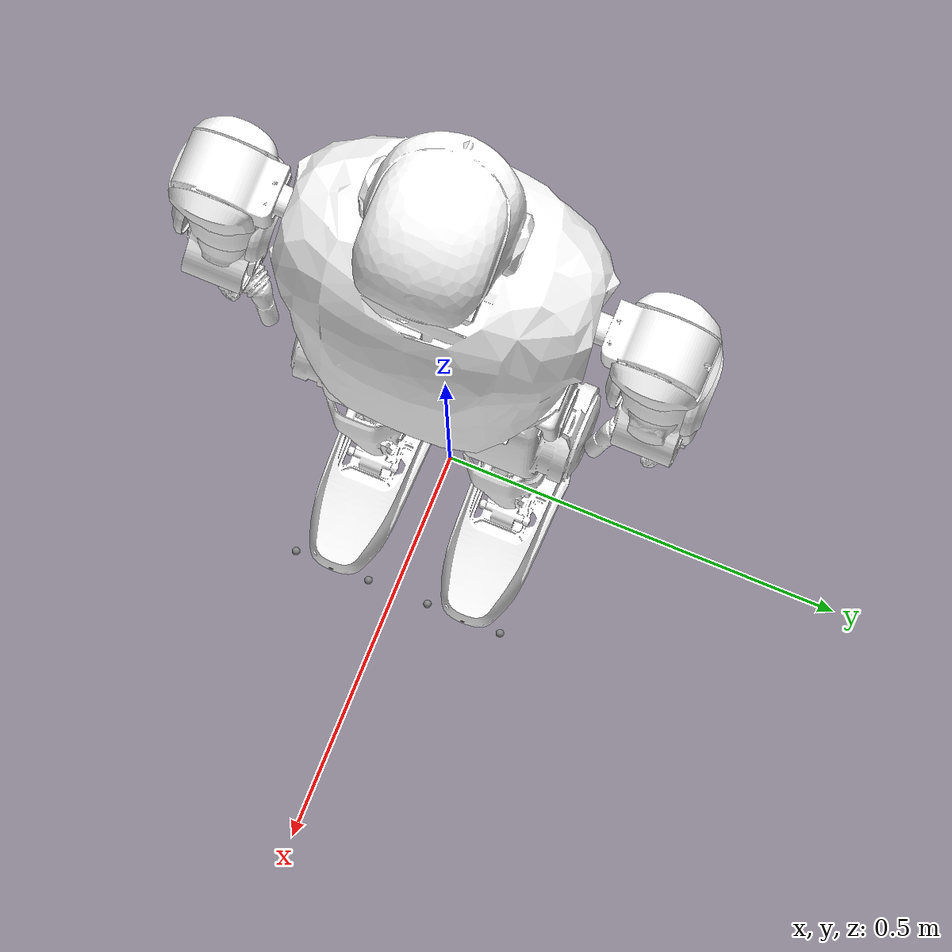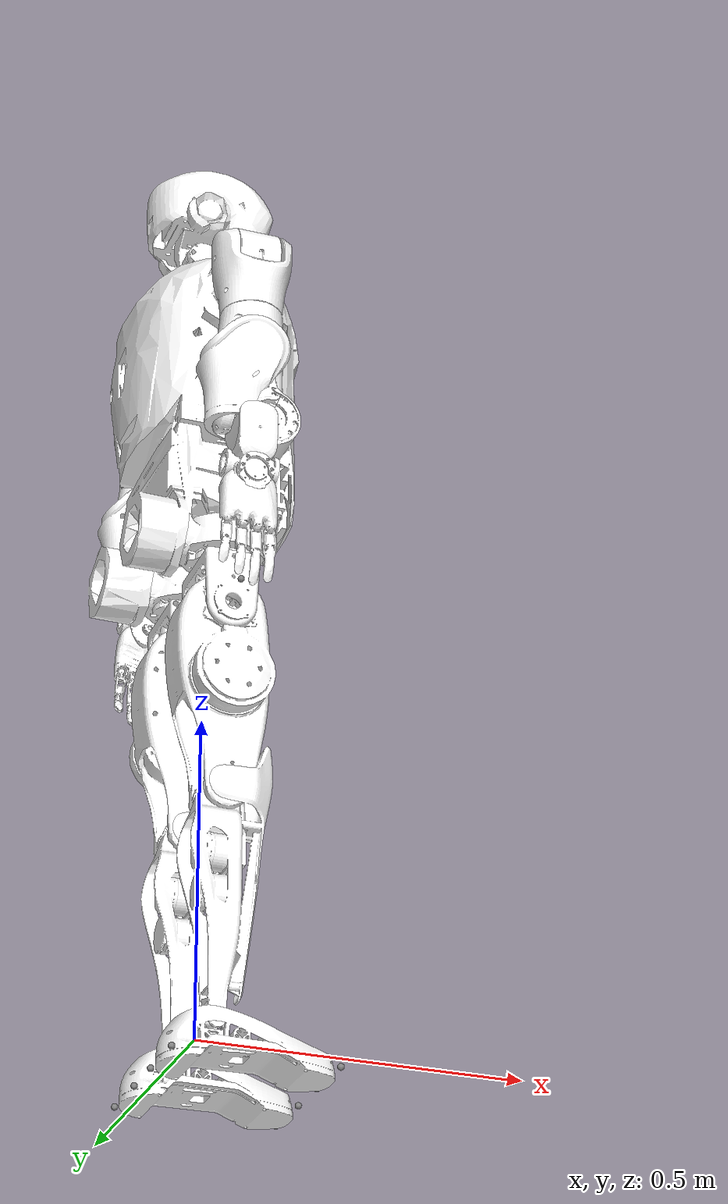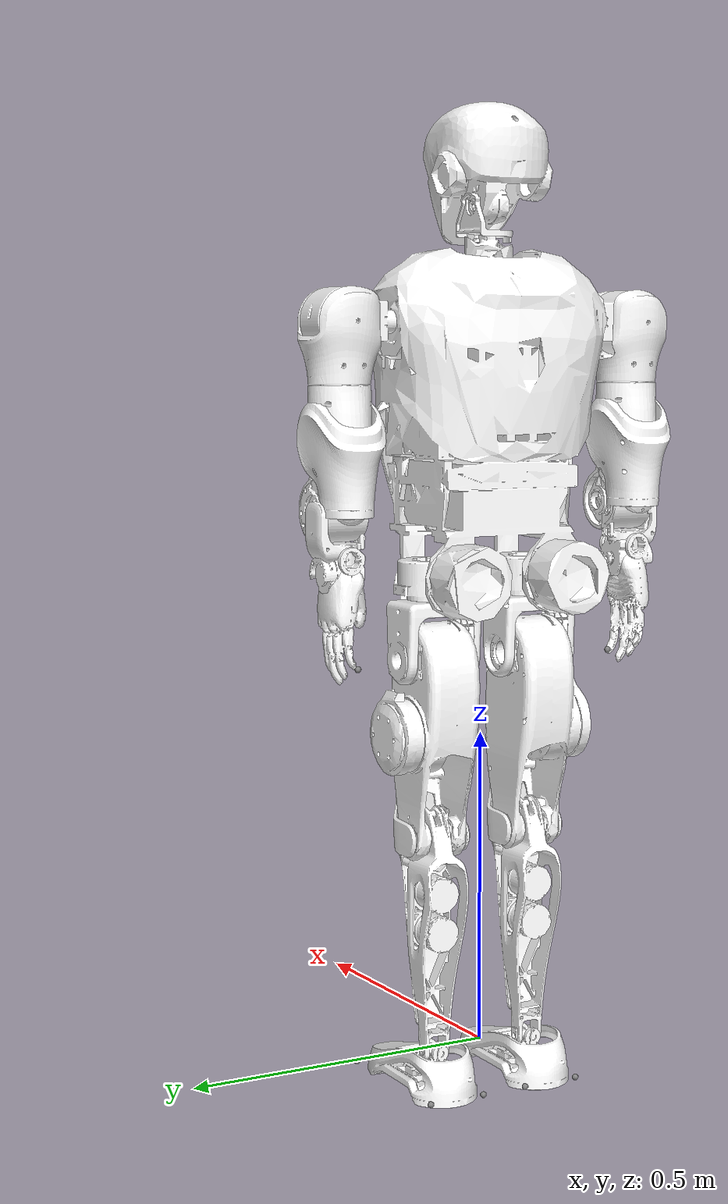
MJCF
<?xml version='1.0' encoding='utf-8'?>
<mujoco model="biped_s41">
  <compiler angle="radian" meshdir="../meshes/" />
  <size njmax="500" nconmax="100" />
  <asset>
    <mesh name="base_link" file="base_link.STL" />
    <mesh name="l_leg_roll" file="l_leg_roll.STL" />
    <mesh name="l_leg_yaw" file="l_leg_yaw.STL" />
    <mesh name="l_leg_pitch" file="l_leg_pitch.STL" />
    <mesh name="l_knee" file="l_knee.STL" />
    <mesh name="l_foot_pitch" file="l_foot_pitch.STL" />
    <mesh name="l_foot_roll" file="l_foot_roll.STL" />
    <mesh name="r_leg_roll" file="r_leg_roll.STL" />
    <mesh name="r_leg_yaw" file="r_leg_yaw.STL" />
    <mesh name="r_leg_pitch" file="r_leg_pitch.STL" />
    <mesh name="r_knee" file="r_knee.STL" />
    <mesh name="r_foot_pitch" file="r_foot_pitch.STL" />
    <mesh name="r_foot_roll" file="r_foot_roll.STL" />
    <mesh name="l_arm_pitch" file="l_arm_pitch.STL" />
    <mesh name="l_arm_roll" file="l_arm_roll.STL" />
    <mesh name="l_arm_yaw" file="l_arm_yaw.STL" />
    <mesh name="l_forearm" file="l_forearm.STL" />
    <mesh name="l_hand_yaw" file="l_hand_yaw.STL" />
    <mesh name="l_hand_pitch" file="l_hand_pitch.STL" />
    <mesh name="l_hand_roll" file="l_hand_roll.STL" />
    <mesh name="r_arm_pitch" file="r_arm_pitch.STL" />
    <mesh name="r_arm_roll" file="r_arm_roll.STL" />
    <mesh name="r_arm_yaw" file="r_arm_yaw.STL" />
    <mesh name="r_forearm" file="r_forearm.STL" />
    <mesh name="r_hand_yaw" file="r_hand_yaw.STL" />
    <mesh name="r_hand_pitch" file="r_hand_pitch.STL" />
    <mesh name="r_hand_roll" file="r_hand_roll.STL" />
    <mesh name="head_yaw" file="head_yaw.STL" />
    <mesh name="head_pitch" file="head_pitch.STL" />
    <mesh name="camera" file="camera.STL" />
  </asset>
  <worldbody>
    <body name="base_link" pos="0 0 0.82">
      <freejoint />
      <site name="imu" pos="0 0 0" />
      <inertial pos="-0.00505 0.0014 0.18077" quat="0.999267 0.00315171 -0.0381606 0.000529346" mass="23.8416" diaginertia="0.282992 0.205343 0.136495" />
      <geom type="mesh" contype="0" conaffinity="0" group="1" density="0" rgba="1 1 1 1" mesh="base_link" />
      <body name="leg_l1_link" pos="-0.0025 0.087 -0.066">
        <inertial pos="-0.00430148 -2.708e-05 -0.00851195" quat="-0.000746146 0.721814 -0.00298446 0.69208" mass="1.71093" diaginertia="0.00371121 0.00277272 0.00205799" />
        <joint name="leg_l1_joint" pos="0 0 0" axis="1 0 0" range="-0.314159 0.663225" actuatorfrcrange="-180 180" damping="0.2" />
        <geom type="mesh" contype="0" conaffinity="0" group="1" density="0" rgba="1 1 1 1" mesh="l_leg_roll" />
        <body name="leg_l2_link">
          <inertial pos="0 -0.00231118 -0.0906254" quat="0.696411 0.717644 -1.38707e-05 1.34603e-05" mass="0.580292" diaginertia="0.00223984 0.00146412 0.00123154" />
          <joint name="leg_l2_joint" pos="0 0 0" axis="0 0 1" range="-0.872665 0.785398" actuatorfrcrange="-100 100" damping="0.2" />
          <geom type="mesh" contype="0" conaffinity="0" group="1" density="0" rgba="1 1 1 1" mesh="l_leg_yaw" />
          <body name="leg_l3_link" pos="0.000500355 -0.001 -0.1287">
            <inertial pos="0.00150537 0.0119961 -0.0841162" quat="0.783717 0.018124 -0.0364866 0.619781" mass="4.50393" diaginertia="0.0396246 0.0389355 0.00980214" />
            <joint name="leg_l3_joint" pos="0 0 0" axis="0 1 0" range="-2.00713 1.5708" actuatorfrcrange="-100 100" damping="0.2" />
            <geom type="mesh" contype="0" conaffinity="0" group="1" density="0" rgba="1 1 1 1" mesh="l_leg_pitch" />
            <body name="leg_l4_link" pos="-6.87185e-05 0 -0.284">
              <inertial pos="0.00696242 5.314e-05 -0.115499" quat="0.99996 -0.00125674 -0.00257659 -0.00848361" mass="1.62777" diaginertia="0.0124395 0.0122957 0.000978994" />
              <joint name="leg_l4_joint" pos="0 0 0" axis="0 1 0" range="0 2.53073" actuatorfrcrange="-180 180" damping="0.2" />
              <geom type="mesh" contype="0" conaffinity="0" group="1" density="0" rgba="1 1 1 1" mesh="l_knee" />
              <body name="leg_l5_link" pos="-0.000431636 0 -0.346">
                <inertial pos="0 0 0" quat="0.5 0.5 -0.5 0.5" mass="0.0719352" diaginertia="1.218e-05 6.92e-06 6.92e-06" />
                <joint name="leg_l5_joint" pos="0 0 0" axis="0 1 0" range="-0.872665 0.349066" actuatorfrcrange="-36 36" damping="0.2" />
                <geom type="mesh" contype="0" conaffinity="0" group="1" density="0" rgba="1 1 1 1" mesh="l_foot_pitch" />
                <body name="leg_l6_link">
                  <inertial pos="0.0373996 -2.2061e-06 -0.0389691" quat="1.14784e-05 0.71913 -5.49597e-06 0.694876" mass="0.501754" diaginertia="0.00177936 0.00163509 0.000396929" />
                  <joint name="leg_l6_joint" pos="0 0 0" axis="1 0 0" range="-0.261799 0.261799" actuatorfrcrange="-36 36" damping="0.2" />
                  <geom type="mesh" contype="0" conaffinity="0" group="1" density="0" rgba="1 1 1 1" mesh="l_foot_roll" />
                  <geom size="0.005" pos="0.17084 0.04773 -0.0595" />
                  <geom size="0.005" pos="-0.073164 0.04773 -0.0595" />
                  <geom size="0.005" pos="0.17084 -0.04773 -0.0595" />
                  <geom size="0.005" pos="-0.073164 -0.04773 -0.0595" />
                  <geom size="0.005" pos="0.17084 0 -0.0595" />
                  <geom size="0.005" pos="-0.073164 0 -0.0595" />
                </body>
              </body>
            </body>
          </body>
        </body>
      </body>
      <body name="leg_r1_link" pos="-0.0025 -0.087 -0.066">
        <inertial pos="-0.00430146 2.709e-05 -0.00851195" quat="0.000746146 0.721814 0.00298446 0.69208" mass="1.71093" diaginertia="0.00371121 0.00277272 0.00205799" />
        <joint name="leg_r1_joint" pos="0 0 0" axis="1 0 0" range="-0.663225 0.314159" actuatorfrcrange="-180 180" damping="0.2" />
        <geom type="mesh" contype="0" conaffinity="0" group="1" density="0" rgba="1 1 1 1" mesh="r_leg_roll" />
        <body name="leg_r2_link">
          <inertial pos="0 0.00231118 -0.0906254" quat="0.717644 0.696411 1.34603e-05 -1.38707e-05" mass="0.580292" diaginertia="0.00223984 0.00146412 0.00123154" />
          <joint name="leg_r2_joint" pos="0 0 0" axis="0 0 1" range="-0.785398 0.872665" actuatorfrcrange="-100 100" damping="0.2" />
          <geom type="mesh" contype="0" conaffinity="0" group="1" density="0" rgba="1 1 1 1" mesh="r_leg_yaw" />
          <body name="leg_r3_link" pos="-4.88007e-05 0 -0.1287">
            <inertial pos="0.00208315 -0.0119964 -0.0841138" quat="0.619803 -0.0366218 0.0180205 0.783696" mass="4.50386" diaginertia="0.0396237 0.0389344 0.00980197" />
            <joint name="leg_r3_joint" pos="0 0 0" axis="0 1 0" range="-2.00713 1.5708" actuatorfrcrange="-100 100" damping="0.2" />
            <geom type="mesh" contype="0" conaffinity="0" group="1" density="0" rgba="1 1 1 1" mesh="r_leg_pitch" />
            <body name="leg_r4_link" pos="0.000147139 0 -0.284">
              <inertial pos="0.00743231 -5.343e-05 -0.115587" quat="0.999959 0.0012612 -0.00276098 0.00849144" mass="1.62656" diaginertia="0.012413 0.0122692 0.00097885" />
              <joint name="leg_r4_joint" pos="0 0 0" axis="0 1 0" range="0 2.53073" actuatorfrcrange="-180 180" damping="0.2" />
              <geom type="mesh" contype="0" conaffinity="0" group="1" density="0" rgba="1 1 1 1" mesh="r_knee" />
              <body name="leg_r5_link" pos="0.000119806 0 -0.346">
                <inertial pos="0 0 0" quat="0.5 0.5 -0.5 0.5" mass="0.0719352" diaginertia="1.218e-05 6.92e-06 6.92e-06" />
                <joint name="leg_r5_joint" pos="0 0 0" axis="0 1 0" range="-0.872665 0.349066" actuatorfrcrange="-36 36" damping="0.2" />
                <geom type="mesh" contype="0" conaffinity="0" group="1" density="0" rgba="1 1 1 1" mesh="r_foot_pitch" />
                <body name="leg_r6_link">
                  <inertial pos="0.037413 -2.2061e-06 -0.0389563" quat="1.14537e-05 0.719014 -5.52258e-06 0.694996" mass="0.501754" diaginertia="0.00177936 0.00163509 0.000396923" />
                  <joint name="leg_r6_joint" pos="0 0 0" axis="1 0 0" range="-0.261799 0.261799" actuatorfrcrange="-36 36" damping="0.2" />
                  <geom type="mesh" contype="0" conaffinity="0" group="1" density="0" rgba="1 1 1 1" mesh="r_foot_roll" />
                  <geom size="0.005" pos="0.17084 0.04773 -0.0595" />
                  <geom size="0.005" pos="-0.073164 0.04773 -0.0595" />
                  <geom size="0.005" pos="0.17084 -0.04773 -0.0595" />
                  <geom size="0.005" pos="-0.073164 -0.04773 -0.0595" />
                  <geom size="0.005" pos="0.17084 0 -0.0595" />
                  <geom size="0.005" pos="-0.073164 0 -0.0595" />
                </body>
              </body>
            </body>
          </body>
        </body>
      </body>
      <body name="zarm_l1_link" pos="-0.0175 0.25886 0.3245">
        <inertial pos="0.008 -0.00158 0.0036" quat="0.332594 0.613759 -0.488813 0.523205" mass="1.15" diaginertia="0.000715367 0.000616958 0.000447675" />
        <joint name="zarm_l1_joint" pos="0 0 0" axis="0 1 0" range="-2.61799 0.523599" actuatorfrcrange="-100 100" damping="0.2" />
        <geom type="mesh" contype="0" conaffinity="0" group="1" density="0" rgba="1 1 1 1" mesh="l_arm_pitch" />
        <body name="zarm_l2_link">
          <inertial pos="0.00144 0.02159 -0.0202" quat="0.359179 0.644078 0.308133 0.601006" mass="0.226" diaginertia="0.000646532 0.000536446 0.000297022" />
          <joint name="zarm_l2_joint" pos="0 0 0" axis="1 0 0" range="-0.349066 2.0944" actuatorfrcrange="-50 50" damping="0.2" />
          <geom type="mesh" contype="0" conaffinity="0" group="1" density="0" rgba="1 1 1 1" mesh="l_arm_roll" />
          <body name="zarm_l3_link">
            <inertial pos="-0.00157 -3e-05 -0.13318" quat="0.999794 -0.000109797 0.00375793 -0.0199494" mass="1.166" diaginertia="0.00245047 0.0021996 0.00111992" />
            <joint name="zarm_l3_joint" pos="0 0 0" axis="0 0 1" range="-1.5708 1.5708" actuatorfrcrange="-20 20" damping="0.2" />
            <geom type="mesh" contype="0" conaffinity="0" group="1" density="0" rgba="1 1 1 1" mesh="l_arm_yaw" />
            <body name="zarm_l4_link" pos="0 0 -0.1646">
              <inertial pos="-4e-05 0.0098 -0.05283" quat="0.533961 0.845509 0 0" mass="0.575" diaginertia="0.00098 0.000956155 0.000543845" />
              <joint name="zarm_l4_joint" pos="0 0 0" axis="0 1 0" range="-1.5708 0" actuatorfrcrange="-20 20" damping="0.2" />
              <geom type="mesh" contype="0" conaffinity="0" group="1" density="0" rgba="1 1 1 1" mesh="l_forearm" />
              <body name="zarm_l5_link">
                <inertial pos="-0.00011 0.00421 -0.11168" quat="0.603182 0.797604 0 0" mass="0.46" diaginertia="0.00077 0.000641322 0.000488678" />
                <joint name="zarm_l5_joint" pos="0 0 0" axis="0 0 1" range="-1.5708 1.5708" actuatorfrcrange="-6 6" damping="0.2" />
                <geom type="mesh" contype="0" conaffinity="0" group="1" density="0" rgba="1 1 1 1" mesh="l_hand_yaw" />
                <body name="zarm_l6_link" pos="0 0 -0.13205">
                  <inertial pos="0.00253 0.00382 -0.05356" quat="0.684588 -0.177029 0.177029 0.684588" mass="0.35" diaginertia="0.00026217 0.00023 0.00016783" />
                  <joint name="zarm_l6_joint" pos="0 0 0" axis="0 1 0" range="-1.5708 1.5708" actuatorfrcrange="-6 6" damping="0.2" />
                  <geom type="mesh" contype="0" conaffinity="0" group="1" density="0" rgba="1 1 1 1" mesh="l_hand_pitch" />
                  <body name="zarm_l7_link" pos="0 0 -0.059">
                    <inertial pos="0.00266828 0.00745579 -0.0716836" quat="0.765899 -0.00921466 0.0074656 0.642851" mass="0.810524" diaginertia="0.0012891 0.00117229 0.000360224" />
                    <joint name="zarm_l7_joint" pos="0 0 0" axis="1 0 0" range="-1.5708 1.5708" actuatorfrcrange="-6 6" damping="0.2" />
                    <geom type="mesh" contype="0" conaffinity="0" group="1" density="0" rgba="1 1 1 1" mesh="l_hand_roll" />
                    <geom size="0.005" pos="0 -0.03 -0.17" />
                  </body>
                </body>
              </body>
            </body>
          </body>
        </body>
      </body>
      <body name="zarm_r1_link" pos="-0.0175 -0.25886 0.3245">
        <inertial pos="0.008 0.00158 -0.0036" quat="0.523205 0.488813 -0.613759 0.332594" mass="1.15" diaginertia="0.000715367 0.000616958 0.000447675" />
        <joint name="zarm_r1_joint" pos="0 0 0" axis="0 1 0" range="-2.61799 0.523599" actuatorfrcrange="-100 100" damping="0.2" />
        <geom type="mesh" contype="0" conaffinity="0" group="1" density="0" rgba="1 1 1 1" mesh="r_arm_pitch" />
        <body name="zarm_r2_link">
          <inertial pos="0.00144 -0.02159 -0.02021" quat="0.601006 0.308133 0.644078 0.359179" mass="0.226" diaginertia="0.000646532 0.000536446 0.000297022" />
          <joint name="zarm_r2_joint" pos="0 0 0" axis="1 0 0" range="-2.0944 0.349066" actuatorfrcrange="-50 50" damping="0.2" />
          <geom type="mesh" contype="0" conaffinity="0" group="1" density="0" rgba="1 1 1 1" mesh="r_arm_roll" />
          <body name="zarm_r3_link">
            <inertial pos="-0.00157 3e-05 -0.13318" quat="0.999794 0.000109797 0.00375793 0.0199494" mass="1.166" diaginertia="0.00245047 0.0021996 0.00111992" />
            <joint name="zarm_r3_joint" pos="0 0 0" axis="0 0 1" range="-1.5708 1.5708" actuatorfrcrange="-20 20" damping="0.2" />
            <geom type="mesh" contype="0" conaffinity="0" group="1" density="0" rgba="1 1 1 1" mesh="r_arm_yaw" />
            <body name="zarm_r4_link" pos="0 0 -0.1646">
              <inertial pos="-4e-05 -0.0098 -0.05283" quat="0.845509 0.533961 0 0" mass="0.575" diaginertia="0.00098 0.000956155 0.000543845" />
              <joint name="zarm_r4_joint" pos="0 0 0" axis="0 1 0" range="-1.5708 0" actuatorfrcrange="-20 20" damping="0.2" />
              <geom type="mesh" contype="0" conaffinity="0" group="1" density="0" rgba="1 1 1 1" mesh="r_forearm" />
              <body name="zarm_r5_link">
                <inertial pos="-0.00011 -0.00421 -0.11168" quat="0.797604 0.603182 0 0" mass="0.46" diaginertia="0.00077 0.000641322 0.000488678" />
                <joint name="zarm_r5_joint" pos="0 0 0" axis="0 0 1" range="-1.5708 1.5708" actuatorfrcrange="-6 6" damping="0.2" />
                <geom type="mesh" contype="0" conaffinity="0" group="1" density="0" rgba="1 1 1 1" mesh="r_hand_yaw" />
                <body name="zarm_r6_link" pos="0 0 -0.13205">
                  <inertial pos="0.00253 -0.00382 -0.05356" quat="0.684588 0.177029 -0.177029 0.684588" mass="0.35" diaginertia="0.00026217 0.00023 0.00016783" />
                  <joint name="zarm_r6_joint" pos="0 0 0" axis="0 1 0" range="-1.5708 1.5708" actuatorfrcrange="-6 6" damping="0.2" />
                  <geom type="mesh" contype="0" conaffinity="0" group="1" density="0" rgba="1 1 1 1" mesh="r_hand_pitch" />
                  <body name="zarm_r7_link" pos="0 0 -0.059">
                    <inertial pos="0.00266828 -0.00745579 -0.0716836" quat="0.648539 -0.000276918 -0.0104684 0.761109" mass="0.810524" diaginertia="0.00104683 0.00098437 0.00027042" />
                    <joint name="zarm_r7_joint" pos="0 0 0" axis="1 0 0" range="-1.5708 1.5708" actuatorfrcrange="-6 6" damping="0.2" />
                    <geom type="mesh" contype="0" conaffinity="0" group="1" density="0" rgba="1 1 1 1" mesh="r_hand_roll" />
                    <geom size="0.005" pos="0 0.03 -0.17" />
                  </body>
                </body>
              </body>
            </body>
          </body>
        </body>
      </body>
      <body name="zhead_1_link" pos="-0.0175 0 0.5014">
        <inertial pos="0 0.01245 -0.02982" quat="0.344336 0.617602 -0.617602 0.344336" mass="0.082" diaginertia="9.23607e-05 7e-05 4.76393e-05" />
        <joint name="zhead_1_joint" pos="0 0 0" axis="0 0 1" range="-1.5708 1.5708" actuatorfrcrange="-1.5 1.5" damping="0.2" />
        <geom type="mesh" contype="0" conaffinity="0" group="1" density="0" rgba="1 1 1 1" mesh="head_yaw" />
        <body name="zhead_2_link">
          <inertial pos="0.0123346 0.000671872 0.0592112" quat="0.945604 0.00240626 -0.318832 0.064608" mass="1.426" diaginertia="0.00432759 0.00400037 0.00326928" />
          <joint name="zhead_2_joint" pos="0 0 0" axis="0 1 0" range="-0.523599 0.523599" actuatorfrcrange="-6 6" damping="0.2" />
          <geom type="mesh" contype="0" conaffinity="0" group="1" density="0" rgba="1 1 1 1" mesh="head_pitch" />
          <geom pos="0.0919101 0.0175 0.0617839" quat="0.953717 0 0.300706 0" type="mesh" contype="0" conaffinity="0" group="1" density="0" rgba="1 1 1 1" mesh="camera" />
        </body>
      </body>
    </body>
  </worldbody>
  <actuator>
    <motor gear="1" joint="leg_l1_joint" name="leg_l1_joint_motor" ctrllimited="true" ctrlrange="-180 180" />
    <motor gear="1" joint="leg_l2_joint" name="leg_l2_joint_motor" ctrllimited="true" ctrlrange="-100 100" />
    <motor gear="1" joint="leg_l3_joint" name="leg_l3_joint_motor" ctrllimited="true" ctrlrange="-100 100" />
    <motor gear="1" joint="leg_l4_joint" name="leg_l4_joint_motor" ctrllimited="true" ctrlrange="-180 180" />
    <motor gear="1" joint="leg_l5_joint" name="leg_l5_joint_motor" ctrllimited="true" ctrlrange="-36 36" />
    <motor gear="1" joint="leg_l6_joint" name="leg_l6_joint_motor" ctrllimited="true" ctrlrange="-36 36" />
    <motor gear="1" joint="leg_r1_joint" name="leg_r1_joint_motor" ctrllimited="true" ctrlrange="-180 180" />
    <motor gear="1" joint="leg_r2_joint" name="leg_r2_joint_motor" ctrllimited="true" ctrlrange="-100 100" />
    <motor gear="1" joint="leg_r3_joint" name="leg_r3_joint_motor" ctrllimited="true" ctrlrange="-100 100" />
    <motor gear="1" joint="leg_r4_joint" name="leg_r4_joint_motor" ctrllimited="true" ctrlrange="-180 180" />
    <motor gear="1" joint="leg_r5_joint" name="leg_r5_joint_motor" ctrllimited="true" ctrlrange="-36 36" />
    <motor gear="1" joint="leg_r6_joint" name="leg_r6_joint_motor" ctrllimited="true" ctrlrange="-36 36" />
    <motor gear="1" joint="zarm_l1_joint" name="zarm_l1_joint_motor" ctrllimited="true" ctrlrange="-100 100" />
    <motor gear="1" joint="zarm_l2_joint" name="zarm_l2_joint_motor" ctrllimited="true" ctrlrange="-50 50" />
    <motor gear="1" joint="zarm_l3_joint" name="zarm_l3_joint_motor" ctrllimited="true" ctrlrange="-20 20" />
    <motor gear="1" joint="zarm_l4_joint" name="zarm_l4_joint_motor" ctrllimited="true" ctrlrange="-20 20" />
    <motor gear="1" joint="zarm_l5_joint" name="zarm_l5_joint_motor" ctrllimited="true" ctrlrange="-6 6" />
    <motor gear="1" joint="zarm_l6_joint" name="zarm_l6_joint_motor" ctrllimited="true" ctrlrange="-6 6" />
    <motor gear="1" joint="zarm_l7_joint" name="zarm_l7_joint_motor" ctrllimited="true" ctrlrange="-6 6" />
    <motor gear="1" joint="zarm_r1_joint" name="zarm_r1_joint_motor" ctrllimited="true" ctrlrange="-100 100" />
    <motor gear="1" joint="zarm_r2_joint" name="zarm_r2_joint_motor" ctrllimited="true" ctrlrange="-50 50" />
    <motor gear="1" joint="zarm_r3_joint" name="zarm_r3_joint_motor" ctrllimited="true" ctrlrange="-20 20" />
    <motor gear="1" joint="zarm_r4_joint" name="zarm_r4_joint_motor" ctrllimited="true" ctrlrange="-20 20" />
    <motor gear="1" joint="zarm_r5_joint" name="zarm_r5_joint_motor" ctrllimited="true" ctrlrange="-6 6" />
    <motor gear="1" joint="zarm_r6_joint" name="zarm_r6_joint_motor" ctrllimited="true" ctrlrange="-6 6" />
    <motor gear="1" joint="zarm_r7_joint" name="zarm_r7_joint_motor" ctrllimited="true" ctrlrange="-6 6" />
    <motor gear="1" joint="zhead_1_joint" name="zhead_1_joint_motor" ctrllimited="true" ctrlrange="-1.5 1.5" />
    <motor gear="1" joint="zhead_2_joint" name="zhead_2_joint_motor" ctrllimited="true" ctrlrange="-6 6" />
  </actuator>
  <sensor>
    <accelerometer name="BodyAcc" site="imu" />
    <velocimeter name="BodyVel" site="imu" />
    <gyro name="BodyGyro" site="imu" />
    <framepos name="BodyPos" objtype="site" objname="imu" />
    <framequat name="BodyQuat" objtype="site" objname="imu" />
    <jointpos name="leg_l1_joint_pos" joint="leg_l1_joint" />
    <jointpos name="leg_l2_joint_pos" joint="leg_l2_joint" />
    <jointpos name="leg_l3_joint_pos" joint="leg_l3_joint" />
    <jointpos name="leg_l4_joint_pos" joint="leg_l4_joint" />
    <jointpos name="leg_l5_joint_pos" joint="leg_l5_joint" />
    <jointpos name="leg_l6_joint_pos" joint="leg_l6_joint" />
    <jointpos name="leg_r1_joint_pos" joint="leg_r1_joint" />
    <jointpos name="leg_r2_joint_pos" joint="leg_r2_joint" />
    <jointpos name="leg_r3_joint_pos" joint="leg_r3_joint" />
    <jointpos name="leg_r4_joint_pos" joint="leg_r4_joint" />
    <jointpos name="leg_r5_joint_pos" joint="leg_r5_joint" />
    <jointpos name="leg_r6_joint_pos" joint="leg_r6_joint" />
    <jointpos name="zarm_l1_joint_pos" joint="zarm_l1_joint" />
    <jointpos name="zarm_l2_joint_pos" joint="zarm_l2_joint" />
    <jointpos name="zarm_l3_joint_pos" joint="zarm_l3_joint" />
    <jointpos name="zarm_l4_joint_pos" joint="zarm_l4_joint" />
    <jointpos name="zarm_l5_joint_pos" joint="zarm_l5_joint" />
    <jointpos name="zarm_l6_joint_pos" joint="zarm_l6_joint" />
    <jointpos name="zarm_l7_joint_pos" joint="zarm_l7_joint" />
    <jointpos name="zarm_r1_joint_pos" joint="zarm_r1_joint" />
    <jointpos name="zarm_r2_joint_pos" joint="zarm_r2_joint" />
    <jointpos name="zarm_r3_joint_pos" joint="zarm_r3_joint" />
    <jointpos name="zarm_r4_joint_pos" joint="zarm_r4_joint" />
    <jointpos name="zarm_r5_joint_pos" joint="zarm_r5_joint" />
    <jointpos name="zarm_r6_joint_pos" joint="zarm_r6_joint" />
    <jointpos name="zarm_r7_joint_pos" joint="zarm_r7_joint" />
    <jointpos name="zhead_1_joint_pos" joint="zhead_1_joint" />
    <jointpos name="zhead_2_joint_pos" joint="zhead_2_joint" />
    <jointvel name="leg_l1_joint_vel" joint="leg_l1_joint" />
    <jointvel name="leg_l2_joint_vel" joint="leg_l2_joint" />
    <jointvel name="leg_l3_joint_vel" joint="leg_l3_joint" />
    <jointvel name="leg_l4_joint_vel" joint="leg_l4_joint" />
    <jointvel name="leg_l5_joint_vel" joint="leg_l5_joint" />
    <jointvel name="leg_l6_joint_vel" joint="leg_l6_joint" />
    <jointvel name="leg_r1_joint_vel" joint="leg_r1_joint" />
    <jointvel name="leg_r2_joint_vel" joint="leg_r2_joint" />
    <jointvel name="leg_r3_joint_vel" joint="leg_r3_joint" />
    <jointvel name="leg_r4_joint_vel" joint="leg_r4_joint" />
    <jointvel name="leg_r5_joint_vel" joint="leg_r5_joint" />
    <jointvel name="leg_r6_joint_vel" joint="leg_r6_joint" />
    <jointvel name="zarm_l1_joint_vel" joint="zarm_l1_joint" />
    <jointvel name="zarm_l2_joint_vel" joint="zarm_l2_joint" />
    <jointvel name="zarm_l3_joint_vel" joint="zarm_l3_joint" />
    <jointvel name="zarm_l4_joint_vel" joint="zarm_l4_joint" />
    <jointvel name="zarm_l5_joint_vel" joint="zarm_l5_joint" />
    <jointvel name="zarm_l6_joint_vel" joint="zarm_l6_joint" />
    <jointvel name="zarm_l7_joint_vel" joint="zarm_l7_joint" />
    <jointvel name="zarm_r1_joint_vel" joint="zarm_r1_joint" />
    <jointvel name="zarm_r2_joint_vel" joint="zarm_r2_joint" />
    <jointvel name="zarm_r3_joint_vel" joint="zarm_r3_joint" />
    <jointvel name="zarm_r4_joint_vel" joint="zarm_r4_joint" />
    <jointvel name="zarm_r5_joint_vel" joint="zarm_r5_joint" />
    <jointvel name="zarm_r6_joint_vel" joint="zarm_r6_joint" />
    <jointvel name="zarm_r7_joint_vel" joint="zarm_r7_joint" />
    <jointvel name="zhead_1_joint_vel" joint="zhead_1_joint" />
    <jointvel name="zhead_2_joint_vel" joint="zhead_2_joint" />
  </sensor>
</mujoco>
